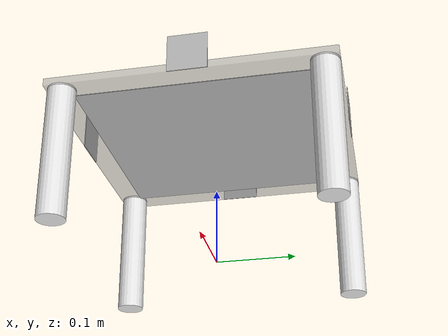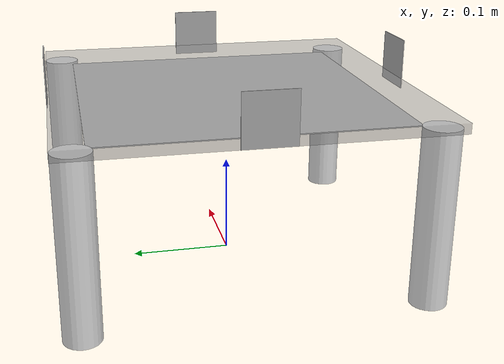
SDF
<?xml version="1.0" ?>
<sdf version="1.5">
  <model name="carrier">
    <static>false</static>
    <link name="base_link">
      <inertial> <mass>1.0</mass> <inertia><ixx>0.001</ixx><iyy>0.001</iyy><izz>0.001</izz></inertia> </inertial>
      <collision name="surface">
        <pose>0 0 0.18 0 0 0</pose>
        <geometry> <box> <size>0.36 0.36 0.01</size> </box> </geometry>
        <surface> <friction> <ode> <mu>Inf</mu> <mu2>Inf</mu2> </ode> </friction> </surface>
      </collision>
      <visual name="visual1">
        <pose>0 0 0.18 0 0 0</pose>
        <geometry> <box> <size>0.36 0.36 0.01</size> </box> </geometry>
        <material> <script> <uri>file://media/materials/scripts/gazebo.material</uri> <name>Gazebo/GreyTransparent</name> </script> </material>
      </visual>
      <visual name="tagn">
        <pose>0 0.18 0.200 1.5708 1.5708 0</pose>
        <geometry> <box> <size>0.05 0.05 0.001</size> </box> </geometry>
        <material> <script> <uri>file://media/materials/scripts/tag.material</uri> <name>tag108</name> </script> </material>
      </visual>
      <visual name="tags">
        <pose>0 -0.18 0.200 1.5708 -1.5708 0</pose>
        <geometry> <box> <size>0.05 0.05 0.001</size> </box> </geometry>
        <material> <script> <uri>file://media/materials/scripts/tag.material</uri> <name>tag108</name> </script> </material>
      </visual>
      <visual name="tage">
        <pose>0.18 0 0.200 1.5708 -1.5708 1.5708</pose>
        <geometry> <box> <size>0.05 0.05 0.001</size> </box> </geometry>
        <material> <script> <uri>file://media/materials/scripts/tag.material</uri> <name>tag108</name> </script> </material>
      </visual>
      <visual name="tagw">
        <pose>-0.18 0 0.200 1.5708 1.5708 1.5708</pose>
        <geometry> <box> <size>0.05 0.05 0.001</size> </box> </geometry>
        <material> <script> <uri>file://media/materials/scripts/tag.material</uri> <name>tag108</name> </script> </material>
      </visual>
      <visual name="tagt">
        <pose>0.0 0 0.175 0 0 0</pose>
        <geometry> <box> <size>0.3 0.3 0.001</size> </box> </geometry>
        <material> <script> <uri>file://media/materials/scripts/tag.material</uri> <name>mm49_target</name> </script> </material>
      </visual>
      <collision name="front_left_leg">
        <pose>0.162 0.162 0.09 0 0 0</pose>
        <geometry> <cylinder> <radius>0.018</radius> <length>0.175</length> </cylinder> </geometry>
        <surface> <friction> <ode> <mu>0.1</mu> <mu2>0.1</mu2> </ode> </friction> </surface>
      </collision>
      <visual name="front_left_leg">
        <pose>0.162 0.162 0.09 0 0 0</pose>
        <geometry> <cylinder> <radius>0.018</radius> <length>0.175</length> </cylinder> </geometry>
        <material> <script> <uri>file://media/materials/scripts/gazebo.material</uri> <name>Gazebo/White</name> </script> </material>
      </visual>
      <collision name="front_right_leg">
        <pose>0.162 -0.162 0.09 0 0 0</pose>
        <geometry> <cylinder> <radius>0.018</radius> <length>0.175</length> </cylinder> </geometry>
        <surface> <friction> <ode> <mu>0.1</mu> <mu2>0.1</mu2> </ode> </friction> </surface>
      </collision>
      <visual name="front_right_leg">
        <pose>0.162 -0.162 0.09 0 0 0</pose>
        <geometry> <cylinder> <radius>0.018</radius> <length>0.175</length> </cylinder> </geometry>
        <material> <script> <uri>file://media/materials/scripts/gazebo.material</uri> <name>Gazebo/White</name> </script> </material>
      </visual>
      <collision name="back_right_leg">
        <pose>-0.162 -0.162 0.09 0 0 0</pose>
        <geometry> <cylinder> <radius>0.018</radius> <length>0.175</length> </cylinder> </geometry>
        <surface> <friction> <ode> <mu>0.1</mu> <mu2>0.1</mu2> </ode> </friction> </surface>
      </collision>
      <visual name="back_right_leg">
        <pose>-0.162 -0.162 0.09 0 0 0</pose>
        <geometry> <cylinder> <radius>0.018</radius> <length>0.175</length> </cylinder> </geometry>
        <material> <script> <uri>file://media/materials/scripts/gazebo.material</uri> <name>Gazebo/White</name> </script> </material>
      </visual>
      <collision name="back_left_leg">
        <pose>-0.162 0.162 0.09 0 0 0</pose>
        <geometry> <cylinder> <radius>0.018</radius> <length>0.175</length> </cylinder> </geometry>
        <surface> <friction> <ode> <mu>0.1</mu> <mu2>0.1</mu2> </ode> </friction> </surface>
      </collision>
      <visual name="back_left_leg">
        <pose>-0.162 0.162 0.09 0 0 0</pose>
        <geometry> <cylinder> <radius>0.018</radius> <length>0.175</length> </cylinder> </geometry>
        <material> <script> <uri>file://media/materials/scripts/gazebo.material</uri> <name>Gazebo/White</name> </script> </material>
      </visual>
    </link>
    <plugin name="gazebo_ros_p3d_named" filename="libgazebo_ros_p3d_named.so">
      <ros> <remapping>odom:=/ground_truth</remapping> <namespace>carrier108</namespace> </ros>
      <body_name>base_link</body_name>
      <frame_name>map</frame_name>
      <child_frame>carrier108</child_frame>
      <update_rate>50</update_rate>
      <xyz_offset>0.0 0.0 0.0</xyz_offset>
      <rpy_offset>0.0 0.0 0.0</rpy_offset>
      <gaussian_noise>0.01</gaussian_noise>
    </plugin>
  </model>
</sdf>
